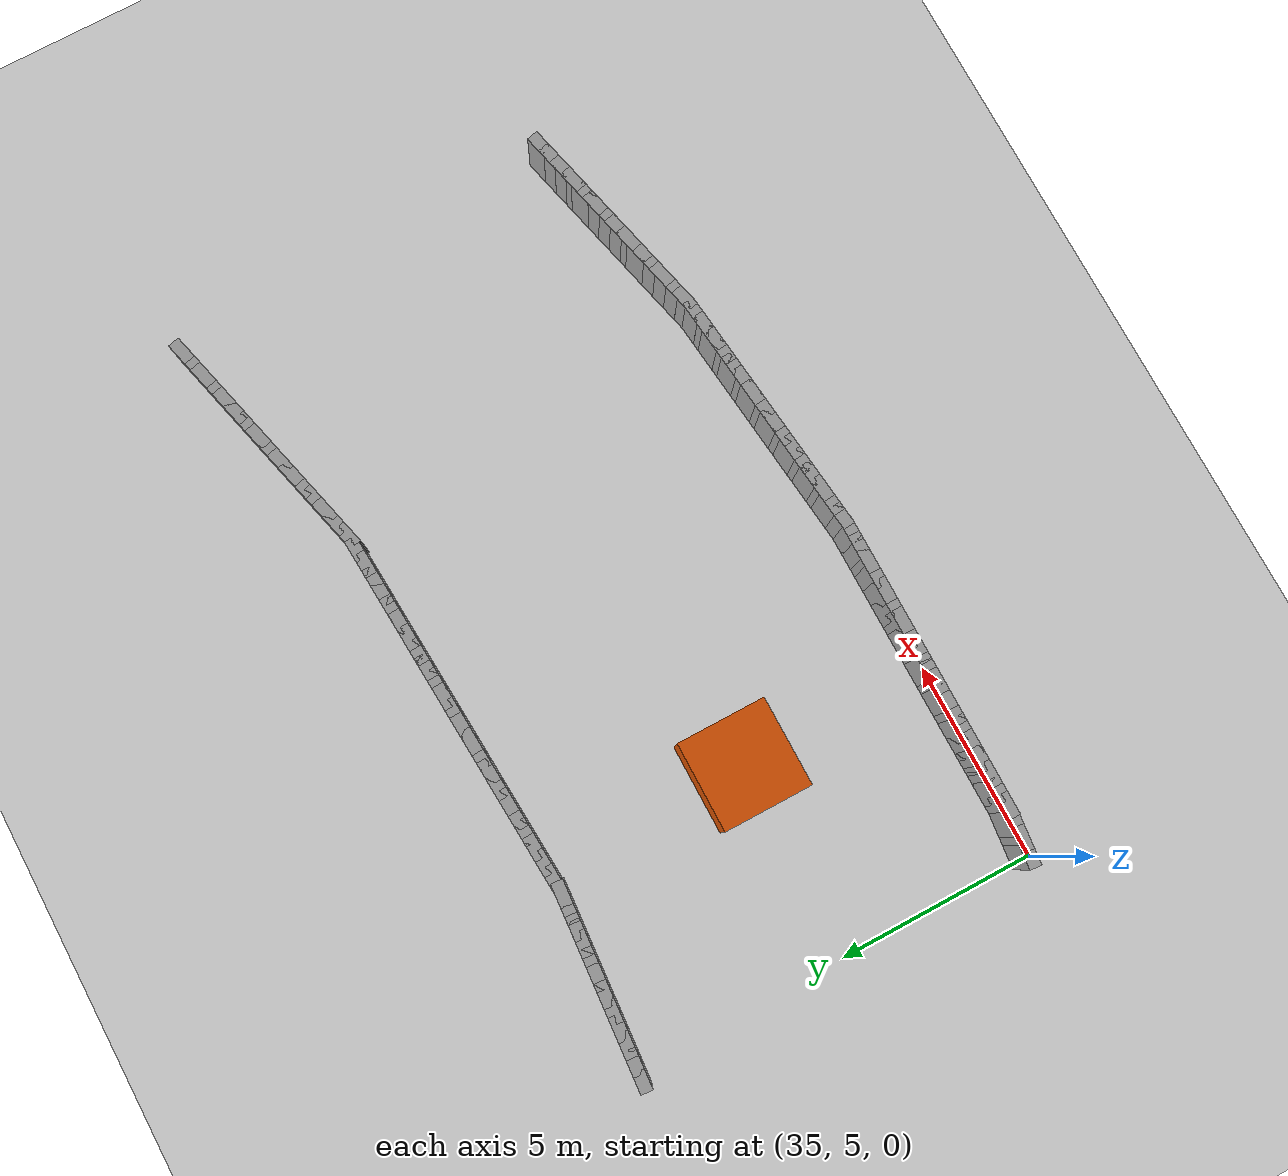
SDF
<sdf version="1.5">
 <world name="img_ellipse_obs">
  <include><uri>model://sun</uri></include>
  <include><uri>model://ground_plane</uri></include>
  <model name="wallL_104">
   <static>true</static>
   <pose>35.187 5.311 0.750 0 0 -0.109</pose>
   <link name="link">
    <collision name="col"><geometry><box><size>0.600 0.300 1.500</size></box></geometry></collision>
    <visual name="vis">
     <geometry><box><size>0.600 0.300 1.500</size></box></geometry>
     <material><ambient>0.6 0.6 0.6 1</ambient><diffuse>0.6 0.6 0.6 1</diffuse></material>
    </visual>
   </link>
  </model>
  <model name="wallL_105">
   <static>true</static>
   <pose>35.585 5.267 0.750 0 0 -0.109</pose>
   <link name="link">
    <collision name="col"><geometry><box><size>0.600 0.300 1.500</size></box></geometry></collision>
    <visual name="vis">
     <geometry><box><size>0.600 0.300 1.500</size></box></geometry>
     <material><ambient>0.6 0.6 0.6 1</ambient><diffuse>0.6 0.6 0.6 1</diffuse></material>
    </visual>
   </link>
  </model>
  <model name="wallL_106">
   <static>true</static>
   <pose>35.983 5.224 0.750 0 0 -0.109</pose>
   <link name="link">
    <collision name="col"><geometry><box><size>0.600 0.300 1.500</size></box></geometry></collision>
    <visual name="vis">
     <geometry><box><size>0.600 0.300 1.500</size></box></geometry>
     <material><ambient>0.6 0.6 0.6 1</ambient><diffuse>0.6 0.6 0.6 1</diffuse></material>
    </visual>
   </link>
  </model>
  <model name="wallL_107">
   <static>true</static>
   <pose>36.381 5.191 0.750 0 0 0.000</pose>
   <link name="link">
    <collision name="col"><geometry><box><size>0.600 0.300 1.500</size></box></geometry></collision>
    <visual name="vis">
     <geometry><box><size>0.600 0.300 1.500</size></box></geometry>
     <material><ambient>0.6 0.6 0.6 1</ambient><diffuse>0.6 0.6 0.6 1</diffuse></material>
    </visual>
   </link>
  </model>
  <model name="wallL_108">
   <static>true</static>
   <pose>36.781 5.191 0.750 0 0 0.000</pose>
   <link name="link">
    <collision name="col"><geometry><box><size>0.600 0.300 1.500</size></box></geometry></collision>
    <visual name="vis">
     <geometry><box><size>0.600 0.300 1.500</size></box></geometry>
     <material><ambient>0.6 0.6 0.6 1</ambient><diffuse>0.6 0.6 0.6 1</diffuse></material>
    </visual>
   </link>
  </model>
  <model name="wallL_109">
   <static>true</static>
   <pose>37.181 5.191 0.750 0 0 0.000</pose>
   <link name="link">
    <collision name="col"><geometry><box><size>0.600 0.300 1.500</size></box></geometry></collision>
    <visual name="vis">
     <geometry><box><size>0.600 0.300 1.500</size></box></geometry>
     <material><ambient>0.6 0.6 0.6 1</ambient><diffuse>0.6 0.6 0.6 1</diffuse></material>
    </visual>
   </link>
  </model>
  <model name="wallL_110">
   <static>true</static>
   <pose>37.581 5.191 0.750 0 0 0.000</pose>
   <link name="link">
    <collision name="col"><geometry><box><size>0.600 0.300 1.500</size></box></geometry></collision>
    <visual name="vis">
     <geometry><box><size>0.600 0.300 1.500</size></box></geometry>
     <material><ambient>0.6 0.6 0.6 1</ambient><diffuse>0.6 0.6 0.6 1</diffuse></material>
    </visual>
   </link>
  </model>
  <model name="wallL_111">
   <static>true</static>
   <pose>37.981 5.191 0.750 0 0 0.000</pose>
   <link name="link">
    <collision name="col"><geometry><box><size>0.600 0.300 1.500</size></box></geometry></collision>
    <visual name="vis">
     <geometry><box><size>0.600 0.300 1.500</size></box></geometry>
     <material><ambient>0.6 0.6 0.6 1</ambient><diffuse>0.6 0.6 0.6 1</diffuse></material>
    </visual>
   </link>
  </model>
  <model name="wallL_112">
   <static>true</static>
   <pose>38.381 5.191 0.750 0 0 0.000</pose>
   <link name="link">
    <collision name="col"><geometry><box><size>0.600 0.300 1.500</size></box></geometry></collision>
    <visual name="vis">
     <geometry><box><size>0.600 0.300 1.500</size></box></geometry>
     <material><ambient>0.6 0.6 0.6 1</ambient><diffuse>0.6 0.6 0.6 1</diffuse></material>
    </visual>
   </link>
  </model>
  <model name="wallL_113">
   <static>true</static>
   <pose>38.781 5.191 0.750 0 0 0.000</pose>
   <link name="link">
    <collision name="col"><geometry><box><size>0.600 0.300 1.500</size></box></geometry></collision>
    <visual name="vis">
     <geometry><box><size>0.600 0.300 1.500</size></box></geometry>
     <material><ambient>0.6 0.6 0.6 1</ambient><diffuse>0.6 0.6 0.6 1</diffuse></material>
    </visual>
   </link>
  </model>
  <model name="wallL_114">
   <static>true</static>
   <pose>39.181 5.191 0.750 0 0 0.000</pose>
   <link name="link">
    <collision name="col"><geometry><box><size>0.600 0.300 1.500</size></box></geometry></collision>
    <visual name="vis">
     <geometry><box><size>0.600 0.300 1.500</size></box></geometry>
     <material><ambient>0.6 0.6 0.6 1</ambient><diffuse>0.6 0.6 0.6 1</diffuse></material>
    </visual>
   </link>
  </model>
  <model name="wallL_115">
   <static>true</static>
   <pose>39.581 5.191 0.750 0 0 0.000</pose>
   <link name="link">
    <collision name="col"><geometry><box><size>0.600 0.300 1.500</size></box></geometry></collision>
    <visual name="vis">
     <geometry><box><size>0.600 0.300 1.500</size></box></geometry>
     <material><ambient>0.6 0.6 0.6 1</ambient><diffuse>0.6 0.6 0.6 1</diffuse></material>
    </visual>
   </link>
  </model>
  <model name="wallL_116">
   <static>true</static>
   <pose>39.981 5.191 0.750 0 0 0.000</pose>
   <link name="link">
    <collision name="col"><geometry><box><size>0.600 0.300 1.500</size></box></geometry></collision>
    <visual name="vis">
     <geometry><box><size>0.600 0.300 1.500</size></box></geometry>
     <material><ambient>0.6 0.6 0.6 1</ambient><diffuse>0.6 0.6 0.6 1</diffuse></material>
    </visual>
   </link>
  </model>
  <model name="wallL_117">
   <static>true</static>
   <pose>40.381 5.191 0.750 0 0 0.000</pose>
   <link name="link">
    <collision name="col"><geometry><box><size>0.600 0.300 1.500</size></box></geometry></collision>
    <visual name="vis">
     <geometry><box><size>0.600 0.300 1.500</size></box></geometry>
     <material><ambient>0.6 0.6 0.6 1</ambient><diffuse>0.6 0.6 0.6 1</diffuse></material>
    </visual>
   </link>
  </model>
  <model name="wallL_118">
   <static>true</static>
   <pose>40.781 5.191 0.750 0 0 0.000</pose>
   <link name="link">
    <collision name="col"><geometry><box><size>0.600 0.300 1.500</size></box></geometry></collision>
    <visual name="vis">
     <geometry><box><size>0.600 0.300 1.500</size></box></geometry>
     <material><ambient>0.6 0.6 0.6 1</ambient><diffuse>0.6 0.6 0.6 1</diffuse></material>
    </visual>
   </link>
  </model>
  <model name="wallL_119">
   <static>true</static>
   <pose>41.181 5.191 0.750 0 0 0.000</pose>
   <link name="link">
    <collision name="col"><geometry><box><size>0.600 0.300 1.500</size></box></geometry></collision>
    <visual name="vis">
     <geometry><box><size>0.600 0.300 1.500</size></box></geometry>
     <material><ambient>0.6 0.6 0.6 1</ambient><diffuse>0.6 0.6 0.6 1</diffuse></material>
    </visual>
   </link>
  </model>
  <model name="wallL_120">
   <static>true</static>
   <pose>41.581 5.191 0.750 0 0 0.000</pose>
   <link name="link">
    <collision name="col"><geometry><box><size>0.600 0.300 1.500</size></box></geometry></collision>
    <visual name="vis">
     <geometry><box><size>0.600 0.300 1.500</size></box></geometry>
     <material><ambient>0.6 0.6 0.6 1</ambient><diffuse>0.6 0.6 0.6 1</diffuse></material>
    </visual>
   </link>
  </model>
  <model name="wallL_121">
   <static>true</static>
   <pose>41.981 5.191 0.750 0 0 0.000</pose>
   <link name="link">
    <collision name="col"><geometry><box><size>0.600 0.300 1.500</size></box></geometry></collision>
    <visual name="vis">
     <geometry><box><size>0.600 0.300 1.500</size></box></geometry>
     <material><ambient>0.6 0.6 0.6 1</ambient><diffuse>0.6 0.6 0.6 1</diffuse></material>
    </visual>
   </link>
  </model>
  <model name="wallL_122">
   <static>true</static>
   <pose>42.381 5.191 0.750 0 0 0.000</pose>
   <link name="link">
    <collision name="col"><geometry><box><size>0.600 0.300 1.500</size></box></geometry></collision>
    <visual name="vis">
     <geometry><box><size>0.600 0.300 1.500</size></box></geometry>
     <material><ambient>0.6 0.6 0.6 1</ambient><diffuse>0.6 0.6 0.6 1</diffuse></material>
    </visual>
   </link>
  </model>
  <model name="wallL_123">
   <static>true</static>
   <pose>42.781 5.191 0.750 0 0 0.000</pose>
   <link name="link">
    <collision name="col"><geometry><box><size>0.600 0.300 1.500</size></box></geometry></collision>
    <visual name="vis">
     <geometry><box><size>0.600 0.300 1.500</size></box></geometry>
     <material><ambient>0.6 0.6 0.6 1</ambient><diffuse>0.6 0.6 0.6 1</diffuse></material>
    </visual>
   </link>
  </model>
  <model name="wallL_124">
   <static>true</static>
   <pose>43.181 5.191 0.750 0 0 0.000</pose>
   <link name="link">
    <collision name="col"><geometry><box><size>0.600 0.300 1.500</size></box></geometry></collision>
    <visual name="vis">
     <geometry><box><size>0.600 0.300 1.500</size></box></geometry>
     <material><ambient>0.6 0.6 0.6 1</ambient><diffuse>0.6 0.6 0.6 1</diffuse></material>
    </visual>
   </link>
  </model>
  <model name="wallL_125">
   <static>true</static>
   <pose>43.581 5.191 0.750 0 0 0.000</pose>
   <link name="link">
    <collision name="col"><geometry><box><size>0.600 0.300 1.500</size></box></geometry></collision>
    <visual name="vis">
     <geometry><box><size>0.600 0.300 1.500</size></box></geometry>
     <material><ambient>0.6 0.6 0.6 1</ambient><diffuse>0.6 0.6 0.6 1</diffuse></material>
    </visual>
   </link>
  </model>
  <model name="wallL_126">
   <static>true</static>
   <pose>43.980 5.216 0.750 0 0 0.106</pose>
   <link name="link">
    <collision name="col"><geometry><box><size>0.600 0.300 1.500</size></box></geometry></collision>
    <visual name="vis">
     <geometry><box><size>0.600 0.300 1.500</size></box></geometry>
     <material><ambient>0.6 0.6 0.6 1</ambient><diffuse>0.6 0.6 0.6 1</diffuse></material>
    </visual>
   </link>
  </model>
  <model name="wallL_127">
   <static>true</static>
   <pose>44.377 5.259 0.750 0 0 0.106</pose>
   <link name="link">
    <collision name="col"><geometry><box><size>0.600 0.300 1.500</size></box></geometry></collision>
    <visual name="vis">
     <geometry><box><size>0.600 0.300 1.500</size></box></geometry>
     <material><ambient>0.6 0.6 0.6 1</ambient><diffuse>0.6 0.6 0.6 1</diffuse></material>
    </visual>
   </link>
  </model>
  <model name="wallL_128">
   <static>true</static>
   <pose>44.775 5.301 0.750 0 0 0.106</pose>
   <link name="link">
    <collision name="col"><geometry><box><size>0.600 0.300 1.500</size></box></geometry></collision>
    <visual name="vis">
     <geometry><box><size>0.600 0.300 1.500</size></box></geometry>
     <material><ambient>0.6 0.6 0.6 1</ambient><diffuse>0.6 0.6 0.6 1</diffuse></material>
    </visual>
   </link>
  </model>
  <model name="wallL_129">
   <static>true</static>
   <pose>45.173 5.344 0.750 0 0 0.106</pose>
   <link name="link">
    <collision name="col"><geometry><box><size>0.600 0.300 1.500</size></box></geometry></collision>
    <visual name="vis">
     <geometry><box><size>0.600 0.300 1.500</size></box></geometry>
     <material><ambient>0.6 0.6 0.6 1</ambient><diffuse>0.6 0.6 0.6 1</diffuse></material>
    </visual>
   </link>
  </model>
  <model name="wallL_130">
   <static>true</static>
   <pose>45.570 5.386 0.750 0 0 0.106</pose>
   <link name="link">
    <collision name="col"><geometry><box><size>0.600 0.300 1.500</size></box></geometry></collision>
    <visual name="vis">
     <geometry><box><size>0.600 0.300 1.500</size></box></geometry>
     <material><ambient>0.6 0.6 0.6 1</ambient><diffuse>0.6 0.6 0.6 1</diffuse></material>
    </visual>
   </link>
  </model>
  <model name="wallL_131">
   <static>true</static>
   <pose>45.968 5.429 0.750 0 0 0.106</pose>
   <link name="link">
    <collision name="col"><geometry><box><size>0.600 0.300 1.500</size></box></geometry></collision>
    <visual name="vis">
     <geometry><box><size>0.600 0.300 1.500</size></box></geometry>
     <material><ambient>0.6 0.6 0.6 1</ambient><diffuse>0.6 0.6 0.6 1</diffuse></material>
    </visual>
   </link>
  </model>
  <model name="wallL_132">
   <static>true</static>
   <pose>46.366 5.471 0.750 0 0 0.106</pose>
   <link name="link">
    <collision name="col"><geometry><box><size>0.600 0.300 1.500</size></box></geometry></collision>
    <visual name="vis">
     <geometry><box><size>0.600 0.300 1.500</size></box></geometry>
     <material><ambient>0.6 0.6 0.6 1</ambient><diffuse>0.6 0.6 0.6 1</diffuse></material>
    </visual>
   </link>
  </model>
  <model name="wallL_133">
   <static>true</static>
   <pose>46.764 5.514 0.750 0 0 0.106</pose>
   <link name="link">
    <collision name="col"><geometry><box><size>0.600 0.300 1.500</size></box></geometry></collision>
    <visual name="vis">
     <geometry><box><size>0.600 0.300 1.500</size></box></geometry>
     <material><ambient>0.6 0.6 0.6 1</ambient><diffuse>0.6 0.6 0.6 1</diffuse></material>
    </visual>
   </link>
  </model>
  <model name="wallL_134">
   <static>true</static>
   <pose>47.161 5.556 0.750 0 0 0.106</pose>
   <link name="link">
    <collision name="col"><geometry><box><size>0.600 0.300 1.500</size></box></geometry></collision>
    <visual name="vis">
     <geometry><box><size>0.600 0.300 1.500</size></box></geometry>
     <material><ambient>0.6 0.6 0.6 1</ambient><diffuse>0.6 0.6 0.6 1</diffuse></material>
    </visual>
   </link>
  </model>
  <model name="wallL_135">
   <static>true</static>
   <pose>47.559 5.599 0.750 0 0 0.106</pose>
   <link name="link">
    <collision name="col"><geometry><box><size>0.600 0.300 1.500</size></box></geometry></collision>
    <visual name="vis">
     <geometry><box><size>0.600 0.300 1.500</size></box></geometry>
     <material><ambient>0.6 0.6 0.6 1</ambient><diffuse>0.6 0.6 0.6 1</diffuse></material>
    </visual>
   </link>
  </model>
  <model name="wallL_136">
   <static>true</static>
   <pose>47.957 5.641 0.750 0 0 0.106</pose>
   <link name="link">
    <collision name="col"><geometry><box><size>0.600 0.300 1.500</size></box></geometry></collision>
    <visual name="vis">
     <geometry><box><size>0.600 0.300 1.500</size></box></geometry>
     <material><ambient>0.6 0.6 0.6 1</ambient><diffuse>0.6 0.6 0.6 1</diffuse></material>
    </visual>
   </link>
  </model>
  <model name="wallL_137">
   <static>true</static>
   <pose>48.355 5.684 0.750 0 0 0.106</pose>
   <link name="link">
    <collision name="col"><geometry><box><size>0.600 0.300 1.500</size></box></geometry></collision>
    <visual name="vis">
     <geometry><box><size>0.600 0.300 1.500</size></box></geometry>
     <material><ambient>0.6 0.6 0.6 1</ambient><diffuse>0.6 0.6 0.6 1</diffuse></material>
    </visual>
   </link>
  </model>
  <model name="wallL_138">
   <static>true</static>
   <pose>48.752 5.726 0.750 0 0 0.106</pose>
   <link name="link">
    <collision name="col"><geometry><box><size>0.600 0.300 1.500</size></box></geometry></collision>
    <visual name="vis">
     <geometry><box><size>0.600 0.300 1.500</size></box></geometry>
     <material><ambient>0.6 0.6 0.6 1</ambient><diffuse>0.6 0.6 0.6 1</diffuse></material>
    </visual>
   </link>
  </model>
  <model name="wallL_139">
   <static>true</static>
   <pose>49.150 5.769 0.750 0 0 0.106</pose>
   <link name="link">
    <collision name="col"><geometry><box><size>0.600 0.300 1.500</size></box></geometry></collision>
    <visual name="vis">
     <geometry><box><size>0.600 0.300 1.500</size></box></geometry>
     <material><ambient>0.6 0.6 0.6 1</ambient><diffuse>0.6 0.6 0.6 1</diffuse></material>
    </visual>
   </link>
  </model>
  <model name="wallL_140">
   <static>true</static>
   <pose>49.548 5.811 0.750 0 0 0.106</pose>
   <link name="link">
    <collision name="col"><geometry><box><size>0.600 0.300 1.500</size></box></geometry></collision>
    <visual name="vis">
     <geometry><box><size>0.600 0.300 1.500</size></box></geometry>
     <material><ambient>0.6 0.6 0.6 1</ambient><diffuse>0.6 0.6 0.6 1</diffuse></material>
    </visual>
   </link>
  </model>
  <model name="wallL_141">
   <static>true</static>
   <pose>49.946 5.854 0.750 0 0 0.106</pose>
   <link name="link">
    <collision name="col"><geometry><box><size>0.600 0.300 1.500</size></box></geometry></collision>
    <visual name="vis">
     <geometry><box><size>0.600 0.300 1.500</size></box></geometry>
     <material><ambient>0.6 0.6 0.6 1</ambient><diffuse>0.6 0.6 0.6 1</diffuse></material>
    </visual>
   </link>
  </model>
  <model name="wallL_142">
   <static>true</static>
   <pose>50.339 5.921 0.750 0 0 0.237</pose>
   <link name="link">
    <collision name="col"><geometry><box><size>0.600 0.300 1.500</size></box></geometry></collision>
    <visual name="vis">
     <geometry><box><size>0.600 0.300 1.500</size></box></geometry>
     <material><ambient>0.6 0.6 0.6 1</ambient><diffuse>0.6 0.6 0.6 1</diffuse></material>
    </visual>
   </link>
  </model>
  <model name="wallL_143">
   <static>true</static>
   <pose>50.728 6.015 0.750 0 0 0.237</pose>
   <link name="link">
    <collision name="col"><geometry><box><size>0.600 0.300 1.500</size></box></geometry></collision>
    <visual name="vis">
     <geometry><box><size>0.600 0.300 1.500</size></box></geometry>
     <material><ambient>0.6 0.6 0.6 1</ambient><diffuse>0.6 0.6 0.6 1</diffuse></material>
    </visual>
   </link>
  </model>
  <model name="wallL_144">
   <static>true</static>
   <pose>51.117 6.109 0.750 0 0 0.237</pose>
   <link name="link">
    <collision name="col"><geometry><box><size>0.600 0.300 1.500</size></box></geometry></collision>
    <visual name="vis">
     <geometry><box><size>0.600 0.300 1.500</size></box></geometry>
     <material><ambient>0.6 0.6 0.6 1</ambient><diffuse>0.6 0.6 0.6 1</diffuse></material>
    </visual>
   </link>
  </model>
  <model name="wallL_145">
   <static>true</static>
   <pose>51.505 6.203 0.750 0 0 0.237</pose>
   <link name="link">
    <collision name="col"><geometry><box><size>0.600 0.300 1.500</size></box></geometry></collision>
    <visual name="vis">
     <geometry><box><size>0.600 0.300 1.500</size></box></geometry>
     <material><ambient>0.6 0.6 0.6 1</ambient><diffuse>0.6 0.6 0.6 1</diffuse></material>
    </visual>
   </link>
  </model>
  <model name="wallL_146">
   <static>true</static>
   <pose>51.894 6.297 0.750 0 0 0.237</pose>
   <link name="link">
    <collision name="col"><geometry><box><size>0.600 0.300 1.500</size></box></geometry></collision>
    <visual name="vis">
     <geometry><box><size>0.600 0.300 1.500</size></box></geometry>
     <material><ambient>0.6 0.6 0.6 1</ambient><diffuse>0.6 0.6 0.6 1</diffuse></material>
    </visual>
   </link>
  </model>
  <model name="wallL_147">
   <static>true</static>
   <pose>52.283 6.390 0.750 0 0 0.237</pose>
   <link name="link">
    <collision name="col"><geometry><box><size>0.600 0.300 1.500</size></box></geometry></collision>
    <visual name="vis">
     <geometry><box><size>0.600 0.300 1.500</size></box></geometry>
     <material><ambient>0.6 0.6 0.6 1</ambient><diffuse>0.6 0.6 0.6 1</diffuse></material>
    </visual>
   </link>
  </model>
  <model name="wallL_148">
   <static>true</static>
   <pose>52.672 6.484 0.750 0 0 0.237</pose>
   <link name="link">
    <collision name="col"><geometry><box><size>0.600 0.300 1.500</size></box></geometry></collision>
    <visual name="vis">
     <geometry><box><size>0.600 0.300 1.500</size></box></geometry>
     <material><ambient>0.6 0.6 0.6 1</ambient><diffuse>0.6 0.6 0.6 1</diffuse></material>
    </visual>
   </link>
  </model>
  <model name="wallL_149">
   <static>true</static>
   <pose>53.061 6.578 0.750 0 0 0.237</pose>
   <link name="link">
    <collision name="col"><geometry><box><size>0.600 0.300 1.500</size></box></geometry></collision>
    <visual name="vis">
     <geometry><box><size>0.600 0.300 1.500</size></box></geometry>
     <material><ambient>0.6 0.6 0.6 1</ambient><diffuse>0.6 0.6 0.6 1</diffuse></material>
    </visual>
   </link>
  </model>
  <model name="wallL_150">
   <static>true</static>
   <pose>53.450 6.672 0.750 0 0 0.237</pose>
   <link name="link">
    <collision name="col"><geometry><box><size>0.600 0.300 1.500</size></box></geometry></collision>
    <visual name="vis">
     <geometry><box><size>0.600 0.300 1.500</size></box></geometry>
     <material><ambient>0.6 0.6 0.6 1</ambient><diffuse>0.6 0.6 0.6 1</diffuse></material>
    </visual>
   </link>
  </model>
  <model name="wallL_151">
   <static>true</static>
   <pose>53.839 6.766 0.750 0 0 0.237</pose>
   <link name="link">
    <collision name="col"><geometry><box><size>0.600 0.300 1.500</size></box></geometry></collision>
    <visual name="vis">
     <geometry><box><size>0.600 0.300 1.500</size></box></geometry>
     <material><ambient>0.6 0.6 0.6 1</ambient><diffuse>0.6 0.6 0.6 1</diffuse></material>
    </visual>
   </link>
  </model>
  <model name="wallL_152">
   <static>true</static>
   <pose>54.227 6.859 0.750 0 0 0.237</pose>
   <link name="link">
    <collision name="col"><geometry><box><size>0.600 0.300 1.500</size></box></geometry></collision>
    <visual name="vis">
     <geometry><box><size>0.600 0.300 1.500</size></box></geometry>
     <material><ambient>0.6 0.6 0.6 1</ambient><diffuse>0.6 0.6 0.6 1</diffuse></material>
    </visual>
   </link>
  </model>
  <model name="wallL_153">
   <static>true</static>
   <pose>54.616 6.953 0.750 0 0 0.237</pose>
   <link name="link">
    <collision name="col"><geometry><box><size>0.600 0.300 1.500</size></box></geometry></collision>
    <visual name="vis">
     <geometry><box><size>0.600 0.300 1.500</size></box></geometry>
     <material><ambient>0.6 0.6 0.6 1</ambient><diffuse>0.6 0.6 0.6 1</diffuse></material>
    </visual>
   </link>
  </model>
  <model name="wallL_154">
   <static>true</static>
   <pose>55.005 7.047 0.750 0 0 0.237</pose>
   <link name="link">
    <collision name="col"><geometry><box><size>0.600 0.300 1.500</size></box></geometry></collision>
    <visual name="vis">
     <geometry><box><size>0.600 0.300 1.500</size></box></geometry>
     <material><ambient>0.6 0.6 0.6 1</ambient><diffuse>0.6 0.6 0.6 1</diffuse></material>
    </visual>
   </link>
  </model>
  <model name="wallL_155">
   <static>true</static>
   <pose>55.394 7.141 0.750 0 0 0.237</pose>
   <link name="link">
    <collision name="col"><geometry><box><size>0.600 0.300 1.500</size></box></geometry></collision>
    <visual name="vis">
     <geometry><box><size>0.600 0.300 1.500</size></box></geometry>
     <material><ambient>0.6 0.6 0.6 1</ambient><diffuse>0.6 0.6 0.6 1</diffuse></material>
    </visual>
   </link>
  </model>
  <model name="wallR_178">
   <static>true</static>
   <pose>54.797 17.051 0.750 0 0 -2.895</pose>
   <link name="link">
    <collision name="col"><geometry><box><size>0.600 0.300 1.500</size></box></geometry></collision>
    <visual name="vis">
     <geometry><box><size>0.600 0.300 1.500</size></box></geometry>
     <material><ambient>0.6 0.6 0.6 1</ambient><diffuse>0.6 0.6 0.6 1</diffuse></material>
    </visual>
   </link>
  </model>
  <model name="wallR_179">
   <static>true</static>
   <pose>54.410 16.953 0.750 0 0 -2.895</pose>
   <link name="link">
    <collision name="col"><geometry><box><size>0.600 0.300 1.500</size></box></geometry></collision>
    <visual name="vis">
     <geometry><box><size>0.600 0.300 1.500</size></box></geometry>
     <material><ambient>0.6 0.6 0.6 1</ambient><diffuse>0.6 0.6 0.6 1</diffuse></material>
    </visual>
   </link>
  </model>
  <model name="wallR_180">
   <static>true</static>
   <pose>54.022 16.855 0.750 0 0 -2.895</pose>
   <link name="link">
    <collision name="col"><geometry><box><size>0.600 0.300 1.500</size></box></geometry></collision>
    <visual name="vis">
     <geometry><box><size>0.600 0.300 1.500</size></box></geometry>
     <material><ambient>0.6 0.6 0.6 1</ambient><diffuse>0.6 0.6 0.6 1</diffuse></material>
    </visual>
   </link>
  </model>
  <model name="wallR_181">
   <static>true</static>
   <pose>53.634 16.758 0.750 0 0 -2.895</pose>
   <link name="link">
    <collision name="col"><geometry><box><size>0.600 0.300 1.500</size></box></geometry></collision>
    <visual name="vis">
     <geometry><box><size>0.600 0.300 1.500</size></box></geometry>
     <material><ambient>0.6 0.6 0.6 1</ambient><diffuse>0.6 0.6 0.6 1</diffuse></material>
    </visual>
   </link>
  </model>
  <model name="wallR_182">
   <static>true</static>
   <pose>53.246 16.660 0.750 0 0 -2.895</pose>
   <link name="link">
    <collision name="col"><geometry><box><size>0.600 0.300 1.500</size></box></geometry></collision>
    <visual name="vis">
     <geometry><box><size>0.600 0.300 1.500</size></box></geometry>
     <material><ambient>0.6 0.6 0.6 1</ambient><diffuse>0.6 0.6 0.6 1</diffuse></material>
    </visual>
   </link>
  </model>
  <model name="wallR_183">
   <static>true</static>
   <pose>52.858 16.562 0.750 0 0 -2.895</pose>
   <link name="link">
    <collision name="col"><geometry><box><size>0.600 0.300 1.500</size></box></geometry></collision>
    <visual name="vis">
     <geometry><box><size>0.600 0.300 1.500</size></box></geometry>
     <material><ambient>0.6 0.6 0.6 1</ambient><diffuse>0.6 0.6 0.6 1</diffuse></material>
    </visual>
   </link>
  </model>
  <model name="wallR_184">
   <static>true</static>
   <pose>52.470 16.465 0.750 0 0 -2.895</pose>
   <link name="link">
    <collision name="col"><geometry><box><size>0.600 0.300 1.500</size></box></geometry></collision>
    <visual name="vis">
     <geometry><box><size>0.600 0.300 1.500</size></box></geometry>
     <material><ambient>0.6 0.6 0.6 1</ambient><diffuse>0.6 0.6 0.6 1</diffuse></material>
    </visual>
   </link>
  </model>
  <model name="wallR_185">
   <static>true</static>
   <pose>52.082 16.367 0.750 0 0 -2.895</pose>
   <link name="link">
    <collision name="col"><geometry><box><size>0.600 0.300 1.500</size></box></geometry></collision>
    <visual name="vis">
     <geometry><box><size>0.600 0.300 1.500</size></box></geometry>
     <material><ambient>0.6 0.6 0.6 1</ambient><diffuse>0.6 0.6 0.6 1</diffuse></material>
    </visual>
   </link>
  </model>
  <model name="wallR_186">
   <static>true</static>
   <pose>51.694 16.270 0.750 0 0 -2.895</pose>
   <link name="link">
    <collision name="col"><geometry><box><size>0.600 0.300 1.500</size></box></geometry></collision>
    <visual name="vis">
     <geometry><box><size>0.600 0.300 1.500</size></box></geometry>
     <material><ambient>0.6 0.6 0.6 1</ambient><diffuse>0.6 0.6 0.6 1</diffuse></material>
    </visual>
   </link>
  </model>
  <model name="wallR_187">
   <static>true</static>
   <pose>51.306 16.172 0.750 0 0 -2.895</pose>
   <link name="link">
    <collision name="col"><geometry><box><size>0.600 0.300 1.500</size></box></geometry></collision>
    <visual name="vis">
     <geometry><box><size>0.600 0.300 1.500</size></box></geometry>
     <material><ambient>0.6 0.6 0.6 1</ambient><diffuse>0.6 0.6 0.6 1</diffuse></material>
    </visual>
   </link>
  </model>
  <model name="wallR_188">
   <static>true</static>
   <pose>50.918 16.074 0.750 0 0 -2.895</pose>
   <link name="link">
    <collision name="col"><geometry><box><size>0.600 0.300 1.500</size></box></geometry></collision>
    <visual name="vis">
     <geometry><box><size>0.600 0.300 1.500</size></box></geometry>
     <material><ambient>0.6 0.6 0.6 1</ambient><diffuse>0.6 0.6 0.6 1</diffuse></material>
    </visual>
   </link>
  </model>
  <model name="wallR_189">
   <static>true</static>
   <pose>50.531 15.977 0.750 0 0 -2.895</pose>
   <link name="link">
    <collision name="col"><geometry><box><size>0.600 0.300 1.500</size></box></geometry></collision>
    <visual name="vis">
     <geometry><box><size>0.600 0.300 1.500</size></box></geometry>
     <material><ambient>0.6 0.6 0.6 1</ambient><diffuse>0.6 0.6 0.6 1</diffuse></material>
    </visual>
   </link>
  </model>
  <model name="wallR_190">
   <static>true</static>
   <pose>50.143 15.879 0.750 0 0 -2.895</pose>
   <link name="link">
    <collision name="col"><geometry><box><size>0.600 0.300 1.500</size></box></geometry></collision>
    <visual name="vis">
     <geometry><box><size>0.600 0.300 1.500</size></box></geometry>
     <material><ambient>0.6 0.6 0.6 1</ambient><diffuse>0.6 0.6 0.6 1</diffuse></material>
    </visual>
   </link>
  </model>
  <model name="wallR_191">
   <static>true</static>
   <pose>49.755 15.781 0.750 0 0 -2.895</pose>
   <link name="link">
    <collision name="col"><geometry><box><size>0.600 0.300 1.500</size></box></geometry></collision>
    <visual name="vis">
     <geometry><box><size>0.600 0.300 1.500</size></box></geometry>
     <material><ambient>0.6 0.6 0.6 1</ambient><diffuse>0.6 0.6 0.6 1</diffuse></material>
    </visual>
   </link>
  </model>
  <model name="wallR_192">
   <static>true</static>
   <pose>49.367 15.684 0.750 0 0 -2.895</pose>
   <link name="link">
    <collision name="col"><geometry><box><size>0.600 0.300 1.500</size></box></geometry></collision>
    <visual name="vis">
     <geometry><box><size>0.600 0.300 1.500</size></box></geometry>
     <material><ambient>0.6 0.6 0.6 1</ambient><diffuse>0.6 0.6 0.6 1</diffuse></material>
    </visual>
   </link>
  </model>
  <model name="wallR_193">
   <static>true</static>
   <pose>48.979 15.586 0.750 0 0 -2.895</pose>
   <link name="link">
    <collision name="col"><geometry><box><size>0.600 0.300 1.500</size></box></geometry></collision>
    <visual name="vis">
     <geometry><box><size>0.600 0.300 1.500</size></box></geometry>
     <material><ambient>0.6 0.6 0.6 1</ambient><diffuse>0.6 0.6 0.6 1</diffuse></material>
    </visual>
   </link>
  </model>
  <model name="wallR_194">
   <static>true</static>
   <pose>48.581 15.554 0.750 0 0 -3.083</pose>
   <link name="link">
    <collision name="col"><geometry><box><size>0.600 0.300 1.500</size></box></geometry></collision>
    <visual name="vis">
     <geometry><box><size>0.600 0.300 1.500</size></box></geometry>
     <material><ambient>0.6 0.6 0.6 1</ambient><diffuse>0.6 0.6 0.6 1</diffuse></material>
    </visual>
   </link>
  </model>
  <model name="wallR_195">
   <static>true</static>
   <pose>48.182 15.531 0.750 0 0 -3.083</pose>
   <link name="link">
    <collision name="col"><geometry><box><size>0.600 0.300 1.500</size></box></geometry></collision>
    <visual name="vis">
     <geometry><box><size>0.600 0.300 1.500</size></box></geometry>
     <material><ambient>0.6 0.6 0.6 1</ambient><diffuse>0.6 0.6 0.6 1</diffuse></material>
    </visual>
   </link>
  </model>
  <model name="wallR_196">
   <static>true</static>
   <pose>47.782 15.507 0.750 0 0 -3.083</pose>
   <link name="link">
    <collision name="col"><geometry><box><size>0.600 0.300 1.500</size></box></geometry></collision>
    <visual name="vis">
     <geometry><box><size>0.600 0.300 1.500</size></box></geometry>
     <material><ambient>0.6 0.6 0.6 1</ambient><diffuse>0.6 0.6 0.6 1</diffuse></material>
    </visual>
   </link>
  </model>
  <model name="wallR_197">
   <static>true</static>
   <pose>47.383 15.484 0.750 0 0 -3.083</pose>
   <link name="link">
    <collision name="col"><geometry><box><size>0.600 0.300 1.500</size></box></geometry></collision>
    <visual name="vis">
     <geometry><box><size>0.600 0.300 1.500</size></box></geometry>
     <material><ambient>0.6 0.6 0.6 1</ambient><diffuse>0.6 0.6 0.6 1</diffuse></material>
    </visual>
   </link>
  </model>
  <model name="wallR_198">
   <static>true</static>
   <pose>46.984 15.461 0.750 0 0 -3.083</pose>
   <link name="link">
    <collision name="col"><geometry><box><size>0.600 0.300 1.500</size></box></geometry></collision>
    <visual name="vis">
     <geometry><box><size>0.600 0.300 1.500</size></box></geometry>
     <material><ambient>0.6 0.6 0.6 1</ambient><diffuse>0.6 0.6 0.6 1</diffuse></material>
    </visual>
   </link>
  </model>
  <model name="wallR_199">
   <static>true</static>
   <pose>46.584 15.437 0.750 0 0 -3.083</pose>
   <link name="link">
    <collision name="col"><geometry><box><size>0.600 0.300 1.500</size></box></geometry></collision>
    <visual name="vis">
     <geometry><box><size>0.600 0.300 1.500</size></box></geometry>
     <material><ambient>0.6 0.6 0.6 1</ambient><diffuse>0.6 0.6 0.6 1</diffuse></material>
    </visual>
   </link>
  </model>
  <model name="wallR_200">
   <static>true</static>
   <pose>46.185 15.414 0.750 0 0 -3.083</pose>
   <link name="link">
    <collision name="col"><geometry><box><size>0.600 0.300 1.500</size></box></geometry></collision>
    <visual name="vis">
     <geometry><box><size>0.600 0.300 1.500</size></box></geometry>
     <material><ambient>0.6 0.6 0.6 1</ambient><diffuse>0.6 0.6 0.6 1</diffuse></material>
    </visual>
   </link>
  </model>
  <model name="wallR_201">
   <static>true</static>
   <pose>45.786 15.390 0.750 0 0 -3.083</pose>
   <link name="link">
    <collision name="col"><geometry><box><size>0.600 0.300 1.500</size></box></geometry></collision>
    <visual name="vis">
     <geometry><box><size>0.600 0.300 1.500</size></box></geometry>
     <material><ambient>0.6 0.6 0.6 1</ambient><diffuse>0.6 0.6 0.6 1</diffuse></material>
    </visual>
   </link>
  </model>
  <model name="wallR_202">
   <static>true</static>
   <pose>45.386 15.367 0.750 0 0 -3.083</pose>
   <link name="link">
    <collision name="col"><geometry><box><size>0.600 0.300 1.500</size></box></geometry></collision>
    <visual name="vis">
     <geometry><box><size>0.600 0.300 1.500</size></box></geometry>
     <material><ambient>0.6 0.6 0.6 1</ambient><diffuse>0.6 0.6 0.6 1</diffuse></material>
    </visual>
   </link>
  </model>
  <model name="wallR_203">
   <static>true</static>
   <pose>44.987 15.344 0.750 0 0 -3.083</pose>
   <link name="link">
    <collision name="col"><geometry><box><size>0.600 0.300 1.500</size></box></geometry></collision>
    <visual name="vis">
     <geometry><box><size>0.600 0.300 1.500</size></box></geometry>
     <material><ambient>0.6 0.6 0.6 1</ambient><diffuse>0.6 0.6 0.6 1</diffuse></material>
    </visual>
   </link>
  </model>
  <model name="wallR_204">
   <static>true</static>
   <pose>44.588 15.320 0.750 0 0 -3.083</pose>
   <link name="link">
    <collision name="col"><geometry><box><size>0.600 0.300 1.500</size></box></geometry></collision>
    <visual name="vis">
     <geometry><box><size>0.600 0.300 1.500</size></box></geometry>
     <material><ambient>0.6 0.6 0.6 1</ambient><diffuse>0.6 0.6 0.6 1</diffuse></material>
    </visual>
   </link>
  </model>
  <model name="wallR_205">
   <static>true</static>
   <pose>44.188 15.297 0.750 0 0 -3.083</pose>
   <link name="link">
    <collision name="col"><geometry><box><size>0.600 0.300 1.500</size></box></geometry></collision>
    <visual name="vis">
     <geometry><box><size>0.600 0.300 1.500</size></box></geometry>
     <material><ambient>0.6 0.6 0.6 1</ambient><diffuse>0.6 0.6 0.6 1</diffuse></material>
    </visual>
   </link>
  </model>
  <model name="wallR_206">
   <static>true</static>
   <pose>43.789 15.273 0.750 0 0 -3.083</pose>
   <link name="link">
    <collision name="col"><geometry><box><size>0.600 0.300 1.500</size></box></geometry></collision>
    <visual name="vis">
     <geometry><box><size>0.600 0.300 1.500</size></box></geometry>
     <material><ambient>0.6 0.6 0.6 1</ambient><diffuse>0.6 0.6 0.6 1</diffuse></material>
    </visual>
   </link>
  </model>
  <model name="wallR_207">
   <static>true</static>
   <pose>43.390 15.250 0.750 0 0 -3.083</pose>
   <link name="link">
    <collision name="col"><geometry><box><size>0.600 0.300 1.500</size></box></geometry></collision>
    <visual name="vis">
     <geometry><box><size>0.600 0.300 1.500</size></box></geometry>
     <material><ambient>0.6 0.6 0.6 1</ambient><diffuse>0.6 0.6 0.6 1</diffuse></material>
    </visual>
   </link>
  </model>
  <model name="wallR_208">
   <static>true</static>
   <pose>42.991 15.227 0.750 0 0 -3.083</pose>
   <link name="link">
    <collision name="col"><geometry><box><size>0.600 0.300 1.500</size></box></geometry></collision>
    <visual name="vis">
     <geometry><box><size>0.600 0.300 1.500</size></box></geometry>
     <material><ambient>0.6 0.6 0.6 1</ambient><diffuse>0.6 0.6 0.6 1</diffuse></material>
    </visual>
   </link>
  </model>
  <model name="wallR_209">
   <static>true</static>
   <pose>42.591 15.203 0.750 0 0 -3.083</pose>
   <link name="link">
    <collision name="col"><geometry><box><size>0.600 0.300 1.500</size></box></geometry></collision>
    <visual name="vis">
     <geometry><box><size>0.600 0.300 1.500</size></box></geometry>
     <material><ambient>0.6 0.6 0.6 1</ambient><diffuse>0.6 0.6 0.6 1</diffuse></material>
    </visual>
   </link>
  </model>
  <model name="wallR_210">
   <static>true</static>
   <pose>42.192 15.180 0.750 0 0 -3.083</pose>
   <link name="link">
    <collision name="col"><geometry><box><size>0.600 0.300 1.500</size></box></geometry></collision>
    <visual name="vis">
     <geometry><box><size>0.600 0.300 1.500</size></box></geometry>
     <material><ambient>0.6 0.6 0.6 1</ambient><diffuse>0.6 0.6 0.6 1</diffuse></material>
    </visual>
   </link>
  </model>
  <model name="wallR_211">
   <static>true</static>
   <pose>41.793 15.156 0.750 0 0 -3.083</pose>
   <link name="link">
    <collision name="col"><geometry><box><size>0.600 0.300 1.500</size></box></geometry></collision>
    <visual name="vis">
     <geometry><box><size>0.600 0.300 1.500</size></box></geometry>
     <material><ambient>0.6 0.6 0.6 1</ambient><diffuse>0.6 0.6 0.6 1</diffuse></material>
    </visual>
   </link>
  </model>
  <model name="wallR_212">
   <static>true</static>
   <pose>41.393 15.133 0.750 0 0 -3.083</pose>
   <link name="link">
    <collision name="col"><geometry><box><size>0.600 0.300 1.500</size></box></geometry></collision>
    <visual name="vis">
     <geometry><box><size>0.600 0.300 1.500</size></box></geometry>
     <material><ambient>0.6 0.6 0.6 1</ambient><diffuse>0.6 0.6 0.6 1</diffuse></material>
    </visual>
   </link>
  </model>
  <model name="wallR_213">
   <static>true</static>
   <pose>40.994 15.110 0.750 0 0 -3.083</pose>
   <link name="link">
    <collision name="col"><geometry><box><size>0.600 0.300 1.500</size></box></geometry></collision>
    <visual name="vis">
     <geometry><box><size>0.600 0.300 1.500</size></box></geometry>
     <material><ambient>0.6 0.6 0.6 1</ambient><diffuse>0.6 0.6 0.6 1</diffuse></material>
    </visual>
   </link>
  </model>
  <model name="wallR_214">
   <static>true</static>
   <pose>40.595 15.086 0.750 0 0 -3.083</pose>
   <link name="link">
    <collision name="col"><geometry><box><size>0.600 0.300 1.500</size></box></geometry></collision>
    <visual name="vis">
     <geometry><box><size>0.600 0.300 1.500</size></box></geometry>
     <material><ambient>0.6 0.6 0.6 1</ambient><diffuse>0.6 0.6 0.6 1</diffuse></material>
    </visual>
   </link>
  </model>
  <model name="wallR_215">
   <static>true</static>
   <pose>40.195 15.063 0.750 0 0 -3.083</pose>
   <link name="link">
    <collision name="col"><geometry><box><size>0.600 0.300 1.500</size></box></geometry></collision>
    <visual name="vis">
     <geometry><box><size>0.600 0.300 1.500</size></box></geometry>
     <material><ambient>0.6 0.6 0.6 1</ambient><diffuse>0.6 0.6 0.6 1</diffuse></material>
    </visual>
   </link>
  </model>
  <model name="wallR_216">
   <static>true</static>
   <pose>39.796 15.039 0.750 0 0 -3.083</pose>
   <link name="link">
    <collision name="col"><geometry><box><size>0.600 0.300 1.500</size></box></geometry></collision>
    <visual name="vis">
     <geometry><box><size>0.600 0.300 1.500</size></box></geometry>
     <material><ambient>0.6 0.6 0.6 1</ambient><diffuse>0.6 0.6 0.6 1</diffuse></material>
    </visual>
   </link>
  </model>
  <model name="wallR_217">
   <static>true</static>
   <pose>39.397 15.021 0.750 0 0 3.066</pose>
   <link name="link">
    <collision name="col"><geometry><box><size>0.600 0.300 1.500</size></box></geometry></collision>
    <visual name="vis">
     <geometry><box><size>0.600 0.300 1.500</size></box></geometry>
     <material><ambient>0.6 0.6 0.6 1</ambient><diffuse>0.6 0.6 0.6 1</diffuse></material>
    </visual>
   </link>
  </model>
  <model name="wallR_218">
   <static>true</static>
   <pose>38.998 15.051 0.750 0 0 3.066</pose>
   <link name="link">
    <collision name="col"><geometry><box><size>0.600 0.300 1.500</size></box></geometry></collision>
    <visual name="vis">
     <geometry><box><size>0.600 0.300 1.500</size></box></geometry>
     <material><ambient>0.6 0.6 0.6 1</ambient><diffuse>0.6 0.6 0.6 1</diffuse></material>
    </visual>
   </link>
  </model>
  <model name="wallR_219">
   <static>true</static>
   <pose>38.599 15.081 0.750 0 0 3.066</pose>
   <link name="link">
    <collision name="col"><geometry><box><size>0.600 0.300 1.500</size></box></geometry></collision>
    <visual name="vis">
     <geometry><box><size>0.600 0.300 1.500</size></box></geometry>
     <material><ambient>0.6 0.6 0.6 1</ambient><diffuse>0.6 0.6 0.6 1</diffuse></material>
    </visual>
   </link>
  </model>
  <model name="wallR_220">
   <static>true</static>
   <pose>38.200 15.112 0.750 0 0 3.066</pose>
   <link name="link">
    <collision name="col"><geometry><box><size>0.600 0.300 1.500</size></box></geometry></collision>
    <visual name="vis">
     <geometry><box><size>0.600 0.300 1.500</size></box></geometry>
     <material><ambient>0.6 0.6 0.6 1</ambient><diffuse>0.6 0.6 0.6 1</diffuse></material>
    </visual>
   </link>
  </model>
  <model name="wallR_221">
   <static>true</static>
   <pose>37.801 15.142 0.750 0 0 3.066</pose>
   <link name="link">
    <collision name="col"><geometry><box><size>0.600 0.300 1.500</size></box></geometry></collision>
    <visual name="vis">
     <geometry><box><size>0.600 0.300 1.500</size></box></geometry>
     <material><ambient>0.6 0.6 0.6 1</ambient><diffuse>0.6 0.6 0.6 1</diffuse></material>
    </visual>
   </link>
  </model>
  <model name="wallR_222">
   <static>true</static>
   <pose>37.402 15.172 0.750 0 0 3.066</pose>
   <link name="link">
    <collision name="col"><geometry><box><size>0.600 0.300 1.500</size></box></geometry></collision>
    <visual name="vis">
     <geometry><box><size>0.600 0.300 1.500</size></box></geometry>
     <material><ambient>0.6 0.6 0.6 1</ambient><diffuse>0.6 0.6 0.6 1</diffuse></material>
    </visual>
   </link>
  </model>
  <model name="wallR_223">
   <static>true</static>
   <pose>37.004 15.203 0.750 0 0 3.066</pose>
   <link name="link">
    <collision name="col"><geometry><box><size>0.600 0.300 1.500</size></box></geometry></collision>
    <visual name="vis">
     <geometry><box><size>0.600 0.300 1.500</size></box></geometry>
     <material><ambient>0.6 0.6 0.6 1</ambient><diffuse>0.6 0.6 0.6 1</diffuse></material>
    </visual>
   </link>
  </model>
  <model name="wallR_224">
   <static>true</static>
   <pose>36.605 15.233 0.750 0 0 3.066</pose>
   <link name="link">
    <collision name="col"><geometry><box><size>0.600 0.300 1.500</size></box></geometry></collision>
    <visual name="vis">
     <geometry><box><size>0.600 0.300 1.500</size></box></geometry>
     <material><ambient>0.6 0.6 0.6 1</ambient><diffuse>0.6 0.6 0.6 1</diffuse></material>
    </visual>
   </link>
  </model>
  <model name="wallR_225">
   <static>true</static>
   <pose>36.206 15.263 0.750 0 0 3.066</pose>
   <link name="link">
    <collision name="col"><geometry><box><size>0.600 0.300 1.500</size></box></geometry></collision>
    <visual name="vis">
     <geometry><box><size>0.600 0.300 1.500</size></box></geometry>
     <material><ambient>0.6 0.6 0.6 1</ambient><diffuse>0.6 0.6 0.6 1</diffuse></material>
    </visual>
   </link>
  </model>
  <model name="wallR_226">
   <static>true</static>
   <pose>35.807 15.293 0.750 0 0 3.066</pose>
   <link name="link">
    <collision name="col"><geometry><box><size>0.600 0.300 1.500</size></box></geometry></collision>
    <visual name="vis">
     <geometry><box><size>0.600 0.300 1.500</size></box></geometry>
     <material><ambient>0.6 0.6 0.6 1</ambient><diffuse>0.6 0.6 0.6 1</diffuse></material>
    </visual>
   </link>
  </model>
  <model name="wallR_227">
   <static>true</static>
   <pose>35.408 15.324 0.750 0 0 3.066</pose>
   <link name="link">
    <collision name="col"><geometry><box><size>0.600 0.300 1.500</size></box></geometry></collision>
    <visual name="vis">
     <geometry><box><size>0.600 0.300 1.500</size></box></geometry>
     <material><ambient>0.6 0.6 0.6 1</ambient><diffuse>0.6 0.6 0.6 1</diffuse></material>
    </visual>
   </link>
  </model>
  <model name="wallR_228">
   <static>true</static>
   <pose>35.009 15.354 0.750 0 0 3.066</pose>
   <link name="link">
    <collision name="col"><geometry><box><size>0.600 0.300 1.500</size></box></geometry></collision>
    <visual name="vis">
     <geometry><box><size>0.600 0.300 1.500</size></box></geometry>
     <material><ambient>0.6 0.6 0.6 1</ambient><diffuse>0.6 0.6 0.6 1</diffuse></material>
    </visual>
   </link>
  </model>
  <model name="obs_0">
   <static>true</static>
   <pose>40.000 10.000 0.750 0 0 0.000</pose>
   <link name="link">
    <collision name="col"><geometry><box><size>2.263 2.263 1.500</size></box></geometry></collision>
    <visual name="vis">
     <geometry><box><size>2.263 2.263 1.500</size></box></geometry>
     <material><ambient>0.8 0.3 0.0 1</ambient><diffuse>0.8 0.3 0.0 1</diffuse></material>
    </visual>
   </link>
  </model>
 </world>
</sdf>
